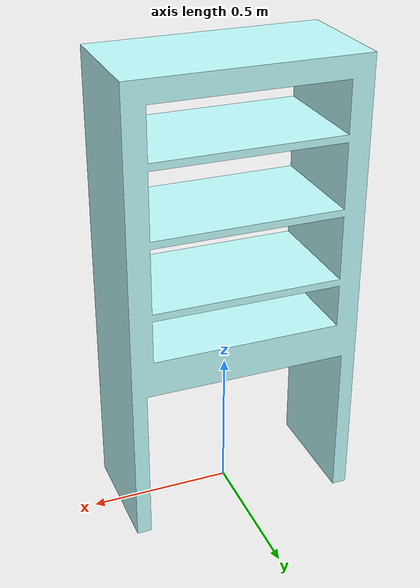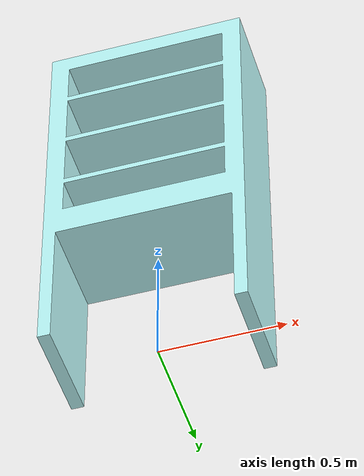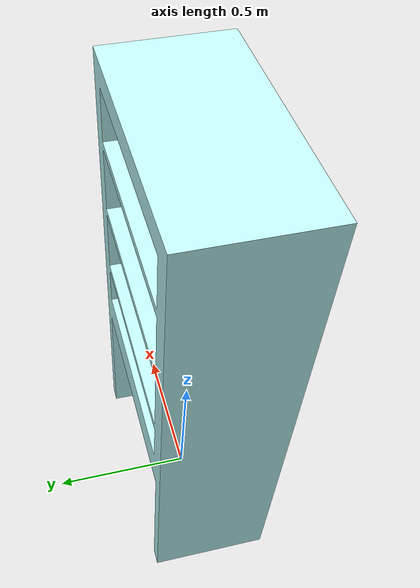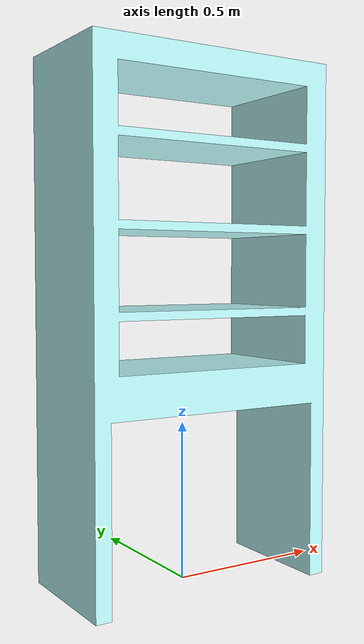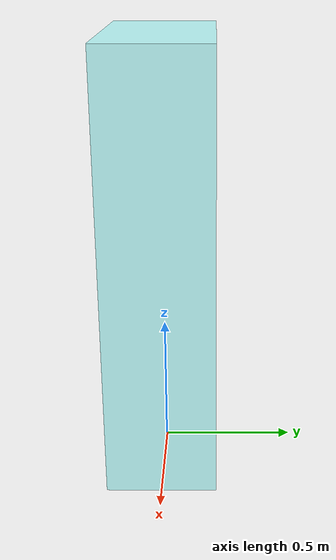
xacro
<?xml version="1.0"?>
<robot name="cabinet" xmlns:xacro="http://wiki.ros.org/xacro">
  <xacro:include filename="$(find cabinet)/urdf/cabinet_macro.xacro"/>
  <xacro:cabinet prefix=""/>

  <xacro:property name="h_level_1" value="0.88" />
  <xacro:property name="h_level_2" value="1.38" /> <!-- 82 inch = 2.0828 m, 90 inch = 2.286 m -->
  <xacro:property name="distance_x" value="0.15" />
  <xacro:property name="distance_y" value="0.0" />

  <!-- Pouring point RPY -->
  <xacro:property name="R_pouring_point" value="${90.0/180.0*pi}" />
  <xacro:property name="P_pouring_point" value="${0.0/180.0*pi}" />
  <xacro:property name="Y_pouring_point" value="${0.0/180.0*pi}" />

  <link name="cabinet_base_plate">
  </link>

  <joint name="cabinet_base_plate" type="fixed">
    <parent link="cabinet_base_plate"/>
    <child link="cabinet_base_link"/>
    <origin rpy="0 0 0" xyz="0 0 0"/>
  </joint>

  <!-- Pickup points in the cabinet -->
  <link name="cabinet_picking_level_1_point_1"></link>
  <joint name="cabinet_picking_level_1_point_1" type="fixed">
    <child link="cabinet_picking_level_1_point_1"/>
    <parent link="cabinet_base_link"/>
    <origin xyz="${distance_x} ${distance_y} ${h_level_1}" rpy="${R_pouring_point} ${P_pouring_point} ${Y_pouring_point}"/>
  </joint>

  <link name="cabinet_picking_level_1_point_2"></link>
  <joint name="cabinet_picking_level_1_point_2" type="fixed">
    <child link="cabinet_picking_level_1_point_2"/>
    <parent link="cabinet_base_link"/>
    <origin xyz="${-distance_x} ${distance_y} ${h_level_1}" rpy="${R_pouring_point} ${P_pouring_point} ${Y_pouring_point}"/>
  </joint>

  <link name="cabinet_picking_level_2_point_1"></link>
  <joint name="cabinet_picking_level_2_point_1" type="fixed">
    <child link="cabinet_picking_level_2_point_1"/>
    <parent link="cabinet_base_link"/>
    <origin xyz="${distance_x} ${distance_y} ${h_level_2}" rpy="${R_pouring_point} ${P_pouring_point} ${Y_pouring_point}"/>
  </joint>

  <link name="cabinet_picking_level_2_point_2"></link>
  <joint name="cabinet_picking_level_2_point_2" type="fixed">
    <child link="cabinet_picking_level_2_point_2"/>
    <parent link="cabinet_base_link"/>
    <origin xyz="${-distance_x} ${distance_y} ${h_level_2}" rpy="${R_pouring_point} ${P_pouring_point} ${Y_pouring_point}"/>
  </joint>

</robot>

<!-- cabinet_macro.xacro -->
<robot xmlns:xacro="http://wiki.ros.org/xacro">

  <xacro:macro name="cabinet" params="prefix">

    <link name="${prefix}cabinet_base_link">
      <inertial>
        <origin
          xyz="-8.8818E-16 -1.7764E-15 0.94365"
          rpy="0 0 0" />
        <mass
          value="164.13" />
        <inertia
          ixx="19.113"
          ixy="-7.2499E-14"
          ixz="8.9519E-14"
          iyy="31.928"
          iyz="-1.7069E-14"
          izz="17.333" />
      </inertial>
      <visual>
        <origin
          xyz="0 0 0"
          rpy="0 0 0" />
        <geometry>
          <mesh
            filename="package://cabinet/meshes/cabinet_base_link.STL" />
        </geometry>
        <material
          name="">
          <color
            rgba="0.75294 1 1 1" />
        </material>
      </visual>
      <collision>
        <origin
          xyz="0 0 0"
          rpy="0 0 0" />
        <geometry>
          <mesh
            filename="package://cabinet/meshes/cabinet_base_link.STL" />
        </geometry>
      </collision>
    </link>

  </xacro:macro>

</robot>
